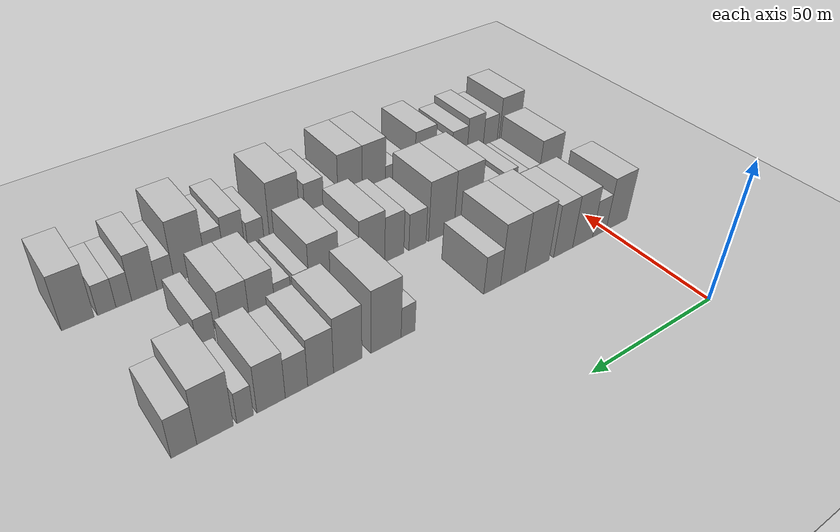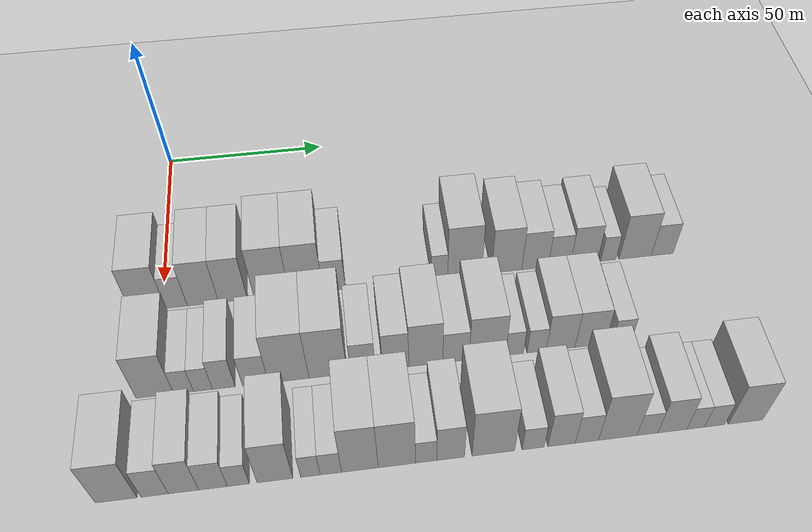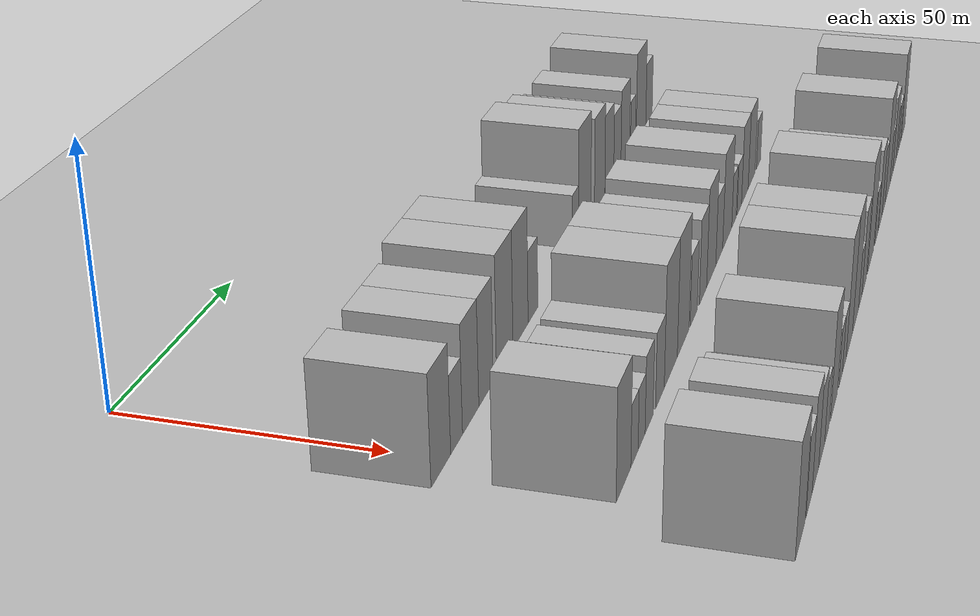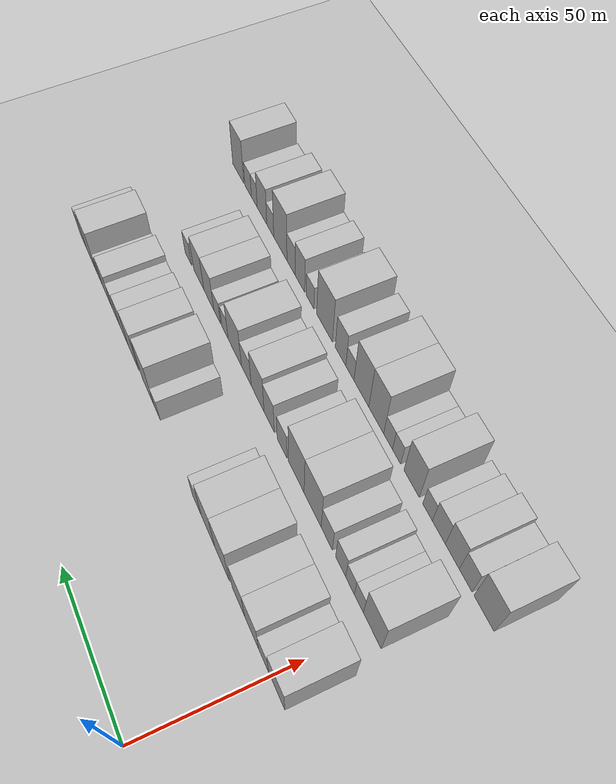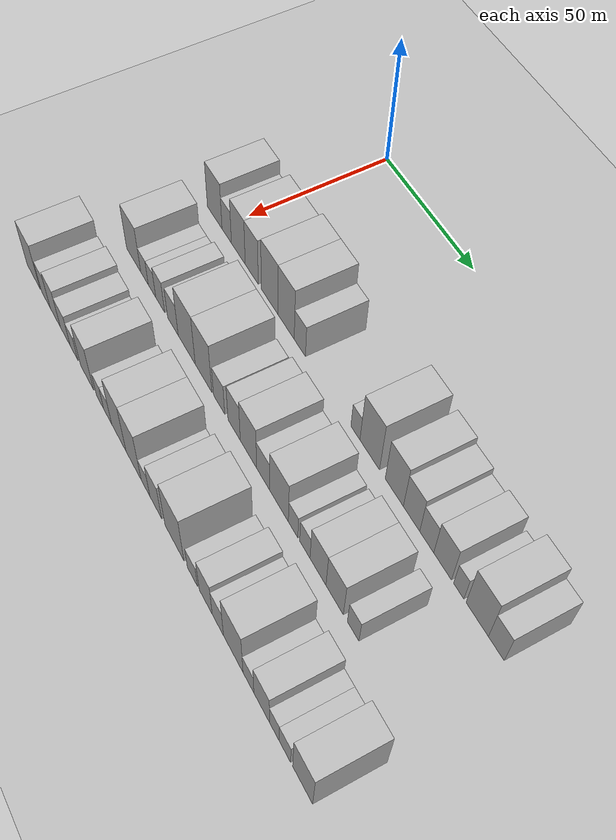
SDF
<sdf version="1.6">
 <world name="default">
  <include><name>ground_plane_1</name><uri>model://HANNAS_ground_plane</uri></include>
  <include>
   <name>ground_plane_2</name>
   <uri>model://HANNAS_ground_plane</uri>
   <pose>100 0 0  0 0 0</pose>
  </include>
  <model name="building_38">
   <static>1</static>
   <pose>50.0000 -4.0690 0 0.000000 0.000000 0.000000</pose>
   <link name="link">
    <pose>0 0 10.50 0 0 0</pose>
    <collision name="collision"><geometry><box><size>20.0000 10.0940 21.0000</size></box></geometry></collision>
    <visual name="visual">
     <cast_shadows>0</cast_shadows>
     <geometry><box><size>20.0000 10.0940 21.0000</size></box></geometry>
     <material>
      <script>
       <uri>model://HANNAS_wall/materials/scripts</uri>
       <uri>model://HANNAS_wall/materials/textures</uri>
       <name>vrc/HANNAS_wall</name>
      </script>
     </material>
    </visual>
   </link>
  </model>
  <model name="building_39">
   <static>1</static>
   <pose>50.0000 4.1592 0 0.000000 0.000000 0.000000</pose>
   <link name="link">
    <pose>0 0 7.50 0 0 0</pose>
    <collision name="collision"><geometry><box><size>20.0000 6.3625 15.0000</size></box></geometry></collision>
    <visual name="visual">
     <cast_shadows>0</cast_shadows>
     <geometry><box><size>20.0000 6.3625 15.0000</size></box></geometry>
     <material>
      <script>
       <uri>model://HANNAS_wall/materials/scripts</uri>
       <uri>model://HANNAS_wall/materials/textures</uri>
       <name>vrc/HANNAS_wall</name>
      </script>
     </material>
    </visual>
   </link>
  </model>
  <model name="building_40">
   <static>1</static>
   <pose>50.0000 11.9197 0 0.000000 0.000000 0.000000</pose>
   <link name="link">
    <pose>0 0 10.50 0 0 0</pose>
    <collision name="collision"><geometry><box><size>20.0000 9.1584 21.0000</size></box></geometry></collision>
    <visual name="visual">
     <cast_shadows>0</cast_shadows>
     <geometry><box><size>20.0000 9.1584 21.0000</size></box></geometry>
     <material>
      <script>
       <uri>model://HANNAS_wall/materials/scripts</uri>
       <uri>model://HANNAS_wall/materials/textures</uri>
       <name>vrc/HANNAS_wall</name>
      </script>
     </material>
    </visual>
   </link>
  </model>
  <model name="building_41">
   <static>1</static>
   <pose>50.0000 20.7276 0 0.000000 0.000000 0.000000</pose>
   <link name="link">
    <pose>0 0 10.50 0 0 0</pose>
    <collision name="collision"><geometry><box><size>20.0000 8.4575 21.0000</size></box></geometry></collision>
    <visual name="visual">
     <cast_shadows>0</cast_shadows>
     <geometry><box><size>20.0000 8.4575 21.0000</size></box></geometry>
     <material>
      <script>
       <uri>model://HANNAS_wall/materials/scripts</uri>
       <uri>model://HANNAS_wall/materials/textures</uri>
       <name>vrc/HANNAS_wall</name>
      </script>
     </material>
    </visual>
   </link>
  </model>
  <model name="building_42">
   <static>1</static>
   <pose>50.0000 32.1395 0 0.000000 0.000000 0.000000</pose>
   <link name="link">
    <pose>0 0 12.00 0 0 0</pose>
    <collision name="collision"><geometry><box><size>20.0000 10.3663 24.0000</size></box></geometry></collision>
    <visual name="visual">
     <cast_shadows>0</cast_shadows>
     <geometry><box><size>20.0000 10.3663 24.0000</size></box></geometry>
     <material>
      <script>
       <uri>model://HANNAS_wall/materials/scripts</uri>
       <uri>model://HANNAS_wall/materials/textures</uri>
       <name>vrc/HANNAS_wall</name>
      </script>
     </material>
    </visual>
   </link>
  </model>
  <model name="building_43">
   <static>1</static>
   <pose>50.0000 42.3265 0 0.000000 0.000000 0.000000</pose>
   <link name="link">
    <pose>0 0 12.00 0 0 0</pose>
    <collision name="collision"><geometry><box><size>20.0000 10.0076 24.0000</size></box></geometry></collision>
    <visual name="visual">
     <cast_shadows>0</cast_shadows>
     <geometry><box><size>20.0000 10.0076 24.0000</size></box></geometry>
     <material>
      <script>
       <uri>model://HANNAS_wall/materials/scripts</uri>
       <uri>model://HANNAS_wall/materials/textures</uri>
       <name>vrc/HANNAS_wall</name>
      </script>
     </material>
    </visual>
   </link>
  </model>
  <model name="building_44">
   <static>1</static>
   <pose>50.0000 50.7054 0 0.000000 0.000000 0.000000</pose>
   <link name="link">
    <pose>0 0 7.50 0 0 0</pose>
    <collision name="collision"><geometry><box><size>20.0000 6.7502 15.0000</size></box></geometry></collision>
    <visual name="visual">
     <cast_shadows>0</cast_shadows>
     <geometry><box><size>20.0000 6.7502 15.0000</size></box></geometry>
     <material>
      <script>
       <uri>model://HANNAS_wall/materials/scripts</uri>
       <uri>model://HANNAS_wall/materials/textures</uri>
       <name>vrc/HANNAS_wall</name>
      </script>
     </material>
    </visual>
   </link>
  </model>
  <model name="building_45">
   <static>1</static>
   <pose>50.0000 82.4860 0 0.000000 0.000000 0.000000</pose>
   <link name="link">
    <pose>0 0 6.00 0 0 0</pose>
    <collision name="collision"><geometry><box><size>20.0000 4.9370 12.0000</size></box></geometry></collision>
    <visual name="visual">
     <cast_shadows>0</cast_shadows>
     <geometry><box><size>20.0000 4.9370 12.0000</size></box></geometry>
     <material>
      <script>
       <uri>model://HANNAS_wall/materials/scripts</uri>
       <uri>model://HANNAS_wall/materials/textures</uri>
       <name>vrc/HANNAS_wall</name>
      </script>
     </material>
    </visual>
   </link>
  </model>
  <model name="building_46">
   <static>1</static>
   <pose>50.0000 90.1778 0 0.000000 0.000000 0.000000</pose>
   <link name="link">
    <pose>0 0 12.00 0 0 0</pose>
    <collision name="collision"><geometry><box><size>20.0000 10.4464 24.0000</size></box></geometry></collision>
    <visual name="visual">
     <cast_shadows>0</cast_shadows>
     <geometry><box><size>20.0000 10.4464 24.0000</size></box></geometry>
     <material>
      <script>
       <uri>model://HANNAS_wall/materials/scripts</uri>
       <uri>model://HANNAS_wall/materials/textures</uri>
       <name>vrc/HANNAS_wall</name>
      </script>
     </material>
    </visual>
   </link>
  </model>
  <model name="building_47">
   <static>1</static>
   <pose>50.0000 103.0657 0 0.000000 0.000000 0.000000</pose>
   <link name="link">
    <pose>0 0 10.50 0 0 0</pose>
    <collision name="collision"><geometry><box><size>20.0000 9.3296 21.0000</size></box></geometry></collision>
    <visual name="visual">
     <cast_shadows>0</cast_shadows>
     <geometry><box><size>20.0000 9.3296 21.0000</size></box></geometry>
     <material>
      <script>
       <uri>model://HANNAS_wall/materials/scripts</uri>
       <uri>model://HANNAS_wall/materials/textures</uri>
       <name>vrc/HANNAS_wall</name>
      </script>
     </material>
    </visual>
   </link>
  </model>
  <model name="building_48">
   <static>1</static>
   <pose>50.0000 111.8211 0 0.000000 0.000000 0.000000</pose>
   <link name="link">
    <pose>0 0 9.00 0 0 0</pose>
    <collision name="collision"><geometry><box><size>20.0000 8.1811 18.0000</size></box></geometry></collision>
    <visual name="visual">
     <cast_shadows>0</cast_shadows>
     <geometry><box><size>20.0000 8.1811 18.0000</size></box></geometry>
     <material>
      <script>
       <uri>model://HANNAS_wall/materials/scripts</uri>
       <uri>model://HANNAS_wall/materials/textures</uri>
       <name>vrc/HANNAS_wall</name>
      </script>
     </material>
    </visual>
   </link>
  </model>
  <model name="building_49">
   <static>1</static>
   <pose>50.0000 119.3543 0 0.000000 0.000000 0.000000</pose>
   <link name="link">
    <pose>0 0 7.50 0 0 0</pose>
    <collision name="collision"><geometry><box><size>20.0000 6.8853 15.0000</size></box></geometry></collision>
    <visual name="visual">
     <cast_shadows>0</cast_shadows>
     <geometry><box><size>20.0000 6.8853 15.0000</size></box></geometry>
     <material>
      <script>
       <uri>model://HANNAS_wall/materials/scripts</uri>
       <uri>model://HANNAS_wall/materials/textures</uri>
       <name>vrc/HANNAS_wall</name>
      </script>
     </material>
    </visual>
   </link>
  </model>
  <model name="building_50">
   <static>1</static>
   <pose>50.0000 127.0319 0 0.000000 0.000000 0.000000</pose>
   <link name="link">
    <pose>0 0 9.00 0 0 0</pose>
    <collision name="collision"><geometry><box><size>20.0000 8.4700 18.0000</size></box></geometry></collision>
    <visual name="visual">
     <cast_shadows>0</cast_shadows>
     <geometry><box><size>20.0000 8.4700 18.0000</size></box></geometry>
     <material>
      <script>
       <uri>model://HANNAS_wall/materials/scripts</uri>
       <uri>model://HANNAS_wall/materials/textures</uri>
       <name>vrc/HANNAS_wall</name>
      </script>
     </material>
    </visual>
   </link>
  </model>
  <model name="building_51">
   <static>1</static>
   <pose>50.0000 134.6706 0 0.000000 0.000000 0.000000</pose>
   <link name="link">
    <pose>0 0 6.00 0 0 0</pose>
    <collision name="collision"><geometry><box><size>20.0000 4.8075 12.0000</size></box></geometry></collision>
    <visual name="visual">
     <cast_shadows>0</cast_shadows>
     <geometry><box><size>20.0000 4.8075 12.0000</size></box></geometry>
     <material>
      <script>
       <uri>model://HANNAS_wall/materials/scripts</uri>
       <uri>model://HANNAS_wall/materials/textures</uri>
       <name>vrc/HANNAS_wall</name>
      </script>
     </material>
    </visual>
   </link>
  </model>
  <model name="building_52">
   <static>1</static>
   <pose>50.0000 143.1510 0 0.000000 0.000000 0.000000</pose>
   <link name="link">
    <pose>0 0 10.50 0 0 0</pose>
    <collision name="collision"><geometry><box><size>20.0000 10.1533 21.0000</size></box></geometry></collision>
    <visual name="visual">
     <cast_shadows>0</cast_shadows>
     <geometry><box><size>20.0000 10.1533 21.0000</size></box></geometry>
     <material>
      <script>
       <uri>model://HANNAS_wall/materials/scripts</uri>
       <uri>model://HANNAS_wall/materials/textures</uri>
       <name>vrc/HANNAS_wall</name>
      </script>
     </material>
    </visual>
   </link>
  </model>
  <model name="building_53">
   <static>1</static>
   <pose>50.0000 151.7000 0 0.000000 0.000000 0.000000</pose>
   <link name="link">
    <pose>0 0 7.50 0 0 0</pose>
    <collision name="collision"><geometry><box><size>20.0000 6.9446 15.0000</size></box></geometry></collision>
    <visual name="visual">
     <cast_shadows>0</cast_shadows>
     <geometry><box><size>20.0000 6.9446 15.0000</size></box></geometry>
     <material>
      <script>
       <uri>model://HANNAS_wall/materials/scripts</uri>
       <uri>model://HANNAS_wall/materials/textures</uri>
       <name>vrc/HANNAS_wall</name>
      </script>
     </material>
    </visual>
   </link>
  </model>
  <model name="building_111">
   <static>1</static>
   <pose>79.0000 -0.7210 0 0.000000 0.000000 0.000000</pose>
   <link name="link">
    <pose>0 0 10.50 0 0 0</pose>
    <collision name="collision"><geometry><box><size>20.0000 10.2492 21.0000</size></box></geometry></collision>
    <visual name="visual">
     <cast_shadows>0</cast_shadows>
     <geometry><box><size>20.0000 10.2492 21.0000</size></box></geometry>
     <material>
      <script>
       <uri>model://HANNAS_wall/materials/scripts</uri>
       <uri>model://HANNAS_wall/materials/textures</uri>
       <name>vrc/HANNAS_wall</name>
      </script>
     </material>
    </visual>
   </link>
  </model>
  <model name="building_112">
   <static>1</static>
   <pose>79.0000 7.0913 0 0.000000 0.000000 0.000000</pose>
   <link name="link">
    <pose>0 0 6.00 0 0 0</pose>
    <collision name="collision"><geometry><box><size>20.0000 5.3755 12.0000</size></box></geometry></collision>
    <visual name="visual">
     <cast_shadows>0</cast_shadows>
     <geometry><box><size>20.0000 5.3755 12.0000</size></box></geometry>
     <material>
      <script>
       <uri>model://HANNAS_wall/materials/scripts</uri>
       <uri>model://HANNAS_wall/materials/textures</uri>
       <name>vrc/HANNAS_wall</name>
      </script>
     </material>
    </visual>
   </link>
  </model>
  <model name="building_113">
   <static>1</static>
   <pose>79.0000 12.3919 0 0.000000 0.000000 0.000000</pose>
   <link name="link">
    <pose>0 0 6.00 0 0 0</pose>
    <collision name="collision"><geometry><box><size>20.0000 5.2257 12.0000</size></box></geometry></collision>
    <visual name="visual">
     <cast_shadows>0</cast_shadows>
     <geometry><box><size>20.0000 5.2257 12.0000</size></box></geometry>
     <material>
      <script>
       <uri>model://HANNAS_wall/materials/scripts</uri>
       <uri>model://HANNAS_wall/materials/textures</uri>
       <name>vrc/HANNAS_wall</name>
      </script>
     </material>
    </visual>
   </link>
  </model>
  <model name="building_114">
   <static>1</static>
   <pose>79.0000 18.1081 0 0.000000 0.000000 0.000000</pose>
   <link name="link">
    <pose>0 0 7.50 0 0 0</pose>
    <collision name="collision"><geometry><box><size>20.0000 6.2067 15.0000</size></box></geometry></collision>
    <visual name="visual">
     <cast_shadows>0</cast_shadows>
     <geometry><box><size>20.0000 6.2067 15.0000</size></box></geometry>
     <material>
      <script>
       <uri>model://HANNAS_wall/materials/scripts</uri>
       <uri>model://HANNAS_wall/materials/textures</uri>
       <name>vrc/HANNAS_wall</name>
      </script>
     </material>
    </visual>
   </link>
  </model>
  <model name="building_115">
   <static>1</static>
   <pose>79.0000 26.8116 0 0.000000 0.000000 0.000000</pose>
   <link name="link">
    <pose>0 0 7.50 0 0 0</pose>
    <collision name="collision"><geometry><box><size>20.0000 7.2002 15.0000</size></box></geometry></collision>
    <visual name="visual">
     <cast_shadows>0</cast_shadows>
     <geometry><box><size>20.0000 7.2002 15.0000</size></box></geometry>
     <material>
      <script>
       <uri>model://HANNAS_wall/materials/scripts</uri>
       <uri>model://HANNAS_wall/materials/textures</uri>
       <name>vrc/HANNAS_wall</name>
      </script>
     </material>
    </visual>
   </link>
  </model>
  <model name="building_116">
   <static>1</static>
   <pose>79.0000 36.0334 0 0.000000 0.000000 0.000000</pose>
   <link name="link">
    <pose>0 0 12.00 0 0 0</pose>
    <collision name="collision"><geometry><box><size>20.0000 11.2434 24.0000</size></box></geometry></collision>
    <visual name="visual">
     <cast_shadows>0</cast_shadows>
     <geometry><box><size>20.0000 11.2434 24.0000</size></box></geometry>
     <material>
      <script>
       <uri>model://HANNAS_wall/materials/scripts</uri>
       <uri>model://HANNAS_wall/materials/textures</uri>
       <name>vrc/HANNAS_wall</name>
      </script>
     </material>
    </visual>
   </link>
  </model>
  <model name="building_117">
   <static>1</static>
   <pose>79.0000 46.9865 0 0.000000 0.000000 0.000000</pose>
   <link name="link">
    <pose>0 0 12.00 0 0 0</pose>
    <collision name="collision"><geometry><box><size>20.0000 10.6627 24.0000</size></box></geometry></collision>
    <visual name="visual">
     <cast_shadows>0</cast_shadows>
     <geometry><box><size>20.0000 10.6627 24.0000</size></box></geometry>
     <material>
      <script>
       <uri>model://HANNAS_wall/materials/scripts</uri>
       <uri>model://HANNAS_wall/materials/textures</uri>
       <name>vrc/HANNAS_wall</name>
      </script>
     </material>
    </visual>
   </link>
  </model>
  <model name="building_118">
   <static>1</static>
   <pose>79.0000 56.7984 0 0.000000 0.000000 0.000000</pose>
   <link name="link">
    <pose>0 0 7.50 0 0 0</pose>
    <collision name="collision"><geometry><box><size>20.0000 6.9612 15.0000</size></box></geometry></collision>
    <visual name="visual">
     <cast_shadows>0</cast_shadows>
     <geometry><box><size>20.0000 6.9612 15.0000</size></box></geometry>
     <material>
      <script>
       <uri>model://HANNAS_wall/materials/scripts</uri>
       <uri>model://HANNAS_wall/materials/textures</uri>
       <name>vrc/HANNAS_wall</name>
      </script>
     </material>
    </visual>
   </link>
  </model>
  <model name="building_119">
   <static>1</static>
   <pose>79.0000 66.0045 0 0.000000 0.000000 0.000000</pose>
   <link name="link">
    <pose>0 0 9.00 0 0 0</pose>
    <collision name="collision"><geometry><box><size>20.0000 7.4509 18.0000</size></box></geometry></collision>
    <visual name="visual">
     <cast_shadows>0</cast_shadows>
     <geometry><box><size>20.0000 7.4509 18.0000</size></box></geometry>
     <material>
      <script>
       <uri>model://HANNAS_wall/materials/scripts</uri>
       <uri>model://HANNAS_wall/materials/textures</uri>
       <name>vrc/HANNAS_wall</name>
      </script>
     </material>
    </visual>
   </link>
  </model>
  <model name="building_120">
   <static>1</static>
   <pose>79.0000 74.5468 0 0.000000 0.000000 0.000000</pose>
   <link name="link">
    <pose>0 0 10.50 0 0 0</pose>
    <collision name="collision"><geometry><box><size>20.0000 9.6337 21.0000</size></box></geometry></collision>
    <visual name="visual">
     <cast_shadows>0</cast_shadows>
     <geometry><box><size>20.0000 9.6337 21.0000</size></box></geometry>
     <material>
      <script>
       <uri>model://HANNAS_wall/materials/scripts</uri>
       <uri>model://HANNAS_wall/materials/textures</uri>
       <name>vrc/HANNAS_wall</name>
      </script>
     </material>
    </visual>
   </link>
  </model>
  <model name="building_121">
   <static>1</static>
   <pose>79.0000 83.1096 0 0.000000 0.000000 0.000000</pose>
   <link name="link">
    <pose>0 0 7.50 0 0 0</pose>
    <collision name="collision"><geometry><box><size>20.0000 7.4921 15.0000</size></box></geometry></collision>
    <visual name="visual">
     <cast_shadows>0</cast_shadows>
     <geometry><box><size>20.0000 7.4921 15.0000</size></box></geometry>
     <material>
      <script>
       <uri>model://HANNAS_wall/materials/scripts</uri>
       <uri>model://HANNAS_wall/materials/textures</uri>
       <name>vrc/HANNAS_wall</name>
      </script>
     </material>
    </visual>
   </link>
  </model>
  <model name="building_122">
   <static>1</static>
   <pose>79.0000 92.1041 0 0.000000 0.000000 0.000000</pose>
   <link name="link">
    <pose>0 0 10.50 0 0 0</pose>
    <collision name="collision"><geometry><box><size>20.0000 10.4968 21.0000</size></box></geometry></collision>
    <visual name="visual">
     <cast_shadows>0</cast_shadows>
     <geometry><box><size>20.0000 10.4968 21.0000</size></box></geometry>
     <material>
      <script>
       <uri>model://HANNAS_wall/materials/scripts</uri>
       <uri>model://HANNAS_wall/materials/textures</uri>
       <name>vrc/HANNAS_wall</name>
      </script>
     </material>
    </visual>
   </link>
  </model>
  <model name="building_123">
   <static>1</static>
   <pose>79.0000 99.9424 0 0.000000 0.000000 0.000000</pose>
   <link name="link">
    <pose>0 0 6.00 0 0 0</pose>
    <collision name="collision"><geometry><box><size>20.0000 5.1799 12.0000</size></box></geometry></collision>
    <visual name="visual">
     <cast_shadows>0</cast_shadows>
     <geometry><box><size>20.0000 5.1799 12.0000</size></box></geometry>
     <material>
      <script>
       <uri>model://HANNAS_wall/materials/scripts</uri>
       <uri>model://HANNAS_wall/materials/textures</uri>
       <name>vrc/HANNAS_wall</name>
      </script>
     </material>
    </visual>
   </link>
  </model>
  <model name="building_124">
   <static>1</static>
   <pose>79.0000 106.3053 0 0.000000 0.000000 0.000000</pose>
   <link name="link">
    <pose>0 0 6.00 0 0 0</pose>
    <collision name="collision"><geometry><box><size>20.0000 5.5459 12.0000</size></box></geometry></collision>
    <visual name="visual">
     <cast_shadows>0</cast_shadows>
     <geometry><box><size>20.0000 5.5459 12.0000</size></box></geometry>
     <material>
      <script>
       <uri>model://HANNAS_wall/materials/scripts</uri>
       <uri>model://HANNAS_wall/materials/textures</uri>
       <name>vrc/HANNAS_wall</name>
      </script>
     </material>
    </visual>
   </link>
  </model>
  <model name="building_125">
   <static>1</static>
   <pose>79.0000 113.2709 0 0.000000 0.000000 0.000000</pose>
   <link name="link">
    <pose>0 0 9.00 0 0 0</pose>
    <collision name="collision"><geometry><box><size>20.0000 8.3852 18.0000</size></box></geometry></collision>
    <visual name="visual">
     <cast_shadows>0</cast_shadows>
     <geometry><box><size>20.0000 8.3852 18.0000</size></box></geometry>
     <material>
      <script>
       <uri>model://HANNAS_wall/materials/scripts</uri>
       <uri>model://HANNAS_wall/materials/textures</uri>
       <name>vrc/HANNAS_wall</name>
      </script>
     </material>
    </visual>
   </link>
  </model>
  <model name="building_126">
   <static>1</static>
   <pose>79.0000 121.8980 0 0.000000 0.000000 0.000000</pose>
   <link name="link">
    <pose>0 0 9.00 0 0 0</pose>
    <collision name="collision"><geometry><box><size>20.0000 8.8690 18.0000</size></box></geometry></collision>
    <visual name="visual">
     <cast_shadows>0</cast_shadows>
     <geometry><box><size>20.0000 8.8690 18.0000</size></box></geometry>
     <material>
      <script>
       <uri>model://HANNAS_wall/materials/scripts</uri>
       <uri>model://HANNAS_wall/materials/textures</uri>
       <name>vrc/HANNAS_wall</name>
      </script>
     </material>
    </visual>
   </link>
  </model>
  <model name="building_127">
   <static>1</static>
   <pose>79.0000 131.2078 0 0.000000 0.000000 0.000000</pose>
   <link name="link">
    <pose>0 0 6.00 0 0 0</pose>
    <collision name="collision"><geometry><box><size>20.0000 5.7507 12.0000</size></box></geometry></collision>
    <visual name="visual">
     <cast_shadows>0</cast_shadows>
     <geometry><box><size>20.0000 5.7507 12.0000</size></box></geometry>
     <material>
      <script>
       <uri>model://HANNAS_wall/materials/scripts</uri>
       <uri>model://HANNAS_wall/materials/textures</uri>
       <name>vrc/HANNAS_wall</name>
      </script>
     </material>
    </visual>
   </link>
  </model>
  <model name="building_182">
   <static>1</static>
   <pose>108.0000 -9.0669 0 0.000000 0.000000 0.000000</pose>
   <link name="link">
    <pose>0 0 10.50 0 0 0</pose>
    <collision name="collision"><geometry><box><size>20.0000 10.4814 21.0000</size></box></geometry></collision>
    <visual name="visual">
     <cast_shadows>0</cast_shadows>
     <geometry><box><size>20.0000 10.4814 21.0000</size></box></geometry>
     <material>
      <script>
       <uri>model://HANNAS_wall/materials/scripts</uri>
       <uri>model://HANNAS_wall/materials/textures</uri>
       <name>vrc/HANNAS_wall</name>
      </script>
     </material>
    </visual>
   </link>
  </model>
  <model name="building_183">
   <static>1</static>
   <pose>108.0000 0.6115 0 0.000000 0.000000 0.000000</pose>
   <link name="link">
    <pose>0 0 7.50 0 0 0</pose>
    <collision name="collision"><geometry><box><size>20.0000 6.8754 15.0000</size></box></geometry></collision>
    <visual name="visual">
     <cast_shadows>0</cast_shadows>
     <geometry><box><size>20.0000 6.8754 15.0000</size></box></geometry>
     <material>
      <script>
       <uri>model://HANNAS_wall/materials/scripts</uri>
       <uri>model://HANNAS_wall/materials/textures</uri>
       <name>vrc/HANNAS_wall</name>
      </script>
     </material>
    </visual>
   </link>
  </model>
  <model name="building_184">
   <static>1</static>
   <pose>108.0000 7.9285 0 0.000000 0.000000 0.000000</pose>
   <link name="link">
    <pose>0 0 9.00 0 0 0</pose>
    <collision name="collision"><geometry><box><size>20.0000 7.7584 18.0000</size></box></geometry></collision>
    <visual name="visual">
     <cast_shadows>0</cast_shadows>
     <geometry><box><size>20.0000 7.7584 18.0000</size></box></geometry>
     <material>
      <script>
       <uri>model://HANNAS_wall/materials/scripts</uri>
       <uri>model://HANNAS_wall/materials/textures</uri>
       <name>vrc/HANNAS_wall</name>
      </script>
     </material>
    </visual>
   </link>
  </model>
  <model name="building_185">
   <static>1</static>
   <pose>108.0000 15.4699 0 0.000000 0.000000 0.000000</pose>
   <link name="link">
    <pose>0 0 7.50 0 0 0</pose>
    <collision name="collision"><geometry><box><size>20.0000 7.3244 15.0000</size></box></geometry></collision>
    <visual name="visual">
     <cast_shadows>0</cast_shadows>
     <geometry><box><size>20.0000 7.3244 15.0000</size></box></geometry>
     <material>
      <script>
       <uri>model://HANNAS_wall/materials/scripts</uri>
       <uri>model://HANNAS_wall/materials/textures</uri>
       <name>vrc/HANNAS_wall</name>
      </script>
     </material>
    </visual>
   </link>
  </model>
  <model name="building_186">
   <static>1</static>
   <pose>108.0000 21.9310 0 0.000000 0.000000 0.000000</pose>
   <link name="link">
    <pose>0 0 6.00 0 0 0</pose>
    <collision name="collision"><geometry><box><size>20.0000 5.5977 12.0000</size></box></geometry></collision>
    <visual name="visual">
     <cast_shadows>0</cast_shadows>
     <geometry><box><size>20.0000 5.5977 12.0000</size></box></geometry>
     <material>
      <script>
       <uri>model://HANNAS_wall/materials/scripts</uri>
       <uri>model://HANNAS_wall/materials/textures</uri>
       <name>vrc/HANNAS_wall</name>
      </script>
     </material>
    </visual>
   </link>
  </model>
  <model name="building_187">
   <static>1</static>
   <pose>108.0000 31.3382 0 0.000000 0.000000 0.000000</pose>
   <link name="link">
    <pose>0 0 10.50 0 0 0</pose>
    <collision name="collision"><geometry><box><size>20.0000 9.2167 21.0000</size></box></geometry></collision>
    <visual name="visual">
     <cast_shadows>0</cast_shadows>
     <geometry><box><size>20.0000 9.2167 21.0000</size></box></geometry>
     <material>
      <script>
       <uri>model://HANNAS_wall/materials/scripts</uri>
       <uri>model://HANNAS_wall/materials/textures</uri>
       <name>vrc/HANNAS_wall</name>
      </script>
     </material>
    </visual>
   </link>
  </model>
  <model name="building_188">
   <static>1</static>
   <pose>108.0000 40.4861 0 0.000000 0.000000 0.000000</pose>
   <link name="link">
    <pose>0 0 6.00 0 0 0</pose>
    <collision name="collision"><geometry><box><size>20.0000 5.0791 12.0000</size></box></geometry></collision>
    <visual name="visual">
     <cast_shadows>0</cast_shadows>
     <geometry><box><size>20.0000 5.0791 12.0000</size></box></geometry>
     <material>
      <script>
       <uri>model://HANNAS_wall/materials/scripts</uri>
       <uri>model://HANNAS_wall/materials/textures</uri>
       <name>vrc/HANNAS_wall</name>
      </script>
     </material>
    </visual>
   </link>
  </model>
  <model name="building_189">
   <static>1</static>
   <pose>108.0000 45.7926 0 0.000000 0.000000 0.000000</pose>
   <link name="link">
    <pose>0 0 6.00 0 0 0</pose>
    <collision name="collision"><geometry><box><size>20.0000 5.5339 12.0000</size></box></geometry></collision>
    <visual name="visual">
     <cast_shadows>0</cast_shadows>
     <geometry><box><size>20.0000 5.5339 12.0000</size></box></geometry>
     <material>
      <script>
       <uri>model://HANNAS_wall/materials/scripts</uri>
       <uri>model://HANNAS_wall/materials/textures</uri>
       <name>vrc/HANNAS_wall</name>
      </script>
     </material>
    </visual>
   </link>
  </model>
  <model name="building_190">
   <static>1</static>
   <pose>108.0000 53.3817 0 0.000000 0.000000 0.000000</pose>
   <link name="link">
    <pose>0 0 12.00 0 0 0</pose>
    <collision name="collision"><geometry><box><size>20.0000 9.6443 24.0000</size></box></geometry></collision>
    <visual name="visual">
     <cast_shadows>0</cast_shadows>
     <geometry><box><size>20.0000 9.6443 24.0000</size></box></geometry>
     <material>
      <script>
       <uri>model://HANNAS_wall/materials/scripts</uri>
       <uri>model://HANNAS_wall/materials/textures</uri>
       <name>vrc/HANNAS_wall</name>
      </script>
     </material>
    </visual>
   </link>
  </model>
  <model name="building_191">
   <static>1</static>
   <pose>108.0000 63.1325 0 0.000000 0.000000 0.000000</pose>
   <link name="link">
    <pose>0 0 12.00 0 0 0</pose>
    <collision name="collision"><geometry><box><size>20.0000 9.8573 24.0000</size></box></geometry></collision>
    <visual name="visual">
     <cast_shadows>0</cast_shadows>
     <geometry><box><size>20.0000 9.8573 24.0000</size></box></geometry>
     <material>
      <script>
       <uri>model://HANNAS_wall/materials/scripts</uri>
       <uri>model://HANNAS_wall/materials/textures</uri>
       <name>vrc/HANNAS_wall</name>
      </script>
     </material>
    </visual>
   </link>
  </model>
  <model name="building_192">
   <static>1</static>
   <pose>108.0000 70.8555 0 0.000000 0.000000 0.000000</pose>
   <link name="link">
    <pose>0 0 6.00 0 0 0</pose>
    <collision name="collision"><geometry><box><size>20.0000 5.5886 12.0000</size></box></geometry></collision>
    <visual name="visual">
     <cast_shadows>0</cast_shadows>
     <geometry><box><size>20.0000 5.5886 12.0000</size></box></geometry>
     <material>
      <script>
       <uri>model://HANNAS_wall/materials/scripts</uri>
       <uri>model://HANNAS_wall/materials/textures</uri>
       <name>vrc/HANNAS_wall</name>
      </script>
     </material>
    </visual>
   </link>
  </model>
  <model name="building_193">
   <static>1</static>
   <pose>108.0000 77.3222 0 0.000000 0.000000 0.000000</pose>
   <link name="link">
    <pose>0 0 9.00 0 0 0</pose>
    <collision name="collision"><geometry><box><size>20.0000 7.3449 18.0000</size></box></geometry></collision>
    <visual name="visual">
     <cast_shadows>0</cast_shadows>
     <geometry><box><size>20.0000 7.3449 18.0000</size></box></geometry>
     <material>
      <script>
       <uri>model://HANNAS_wall/materials/scripts</uri>
       <uri>model://HANNAS_wall/materials/textures</uri>
       <name>vrc/HANNAS_wall</name>
      </script>
     </material>
    </visual>
   </link>
  </model>
  <model name="building_194">
   <static>1</static>
   <pose>108.0000 88.7080 0 0.000000 0.000000 0.000000</pose>
   <link name="link">
    <pose>0 0 12.00 0 0 0</pose>
    <collision name="collision"><geometry><box><size>20.0000 11.4267 24.0000</size></box></geometry></collision>
    <visual name="visual">
     <cast_shadows>0</cast_shadows>
     <geometry><box><size>20.0000 11.4267 24.0000</size></box></geometry>
     <material>
      <script>
       <uri>model://HANNAS_wall/materials/scripts</uri>
       <uri>model://HANNAS_wall/materials/textures</uri>
       <name>vrc/HANNAS_wall</name>
      </script>
     </material>
    </visual>
   </link>
  </model>
  <model name="building_195">
   <static>1</static>
   <pose>108.0000 99.3933 0 0.000000 0.000000 0.000000</pose>
   <link name="link">
    <pose>0 0 6.00 0 0 0</pose>
    <collision name="collision"><geometry><box><size>20.0000 5.9439 12.0000</size></box></geometry></collision>
    <visual name="visual">
     <cast_shadows>0</cast_shadows>
     <geometry><box><size>20.0000 5.9439 12.0000</size></box></geometry>
     <material>
      <script>
       <uri>model://HANNAS_wall/materials/scripts</uri>
       <uri>model://HANNAS_wall/materials/textures</uri>
       <name>vrc/HANNAS_wall</name>
      </script>
     </material>
    </visual>
   </link>
  </model>
  <model name="building_196">
   <static>1</static>
   <pose>108.0000 107.0836 0 0.000000 0.000000 0.000000</pose>
   <link name="link">
    <pose>0 0 9.00 0 0 0</pose>
    <collision name="collision"><geometry><box><size>20.0000 7.4367 18.0000</size></box></geometry></collision>
    <visual name="visual">
     <cast_shadows>0</cast_shadows>
     <geometry><box><size>20.0000 7.4367 18.0000</size></box></geometry>
     <material>
      <script>
       <uri>model://HANNAS_wall/materials/scripts</uri>
       <uri>model://HANNAS_wall/materials/textures</uri>
       <name>vrc/HANNAS_wall</name>
      </script>
     </material>
    </visual>
   </link>
  </model>
  <model name="building_197">
   <static>1</static>
   <pose>108.0000 113.9406 0 0.000000 0.000000 0.000000</pose>
   <link name="link">
    <pose>0 0 7.50 0 0 0</pose>
    <collision name="collision"><geometry><box><size>20.0000 6.2773 15.0000</size></box></geometry></collision>
    <visual name="visual">
     <cast_shadows>0</cast_shadows>
     <geometry><box><size>20.0000 6.2773 15.0000</size></box></geometry>
     <material>
      <script>
       <uri>model://HANNAS_wall/materials/scripts</uri>
       <uri>model://HANNAS_wall/materials/textures</uri>
       <name>vrc/HANNAS_wall</name>
      </script>
     </material>
    </visual>
   </link>
  </model>
  <model name="building_198">
   <static>1</static>
   <pose>108.0000 122.3624 0 0.000000 0.000000 0.000000</pose>
   <link name="link">
    <pose>0 0 12.00 0 0 0</pose>
    <collision name="collision"><geometry><box><size>20.0000 10.5663 24.0000</size></box></geometry></collision>
    <visual name="visual">
     <cast_shadows>0</cast_shadows>
     <geometry><box><size>20.0000 10.5663 24.0000</size></box></geometry>
     <material>
      <script>
       <uri>model://HANNAS_wall/materials/scripts</uri>
       <uri>model://HANNAS_wall/materials/textures</uri>
       <name>vrc/HANNAS_wall</name>
      </script>
     </material>
    </visual>
   </link>
  </model>
  <model name="building_199">
   <static>1</static>
   <pose>108.0000 130.5173 0 0.000000 0.000000 0.000000</pose>
   <link name="link">
    <pose>0 0 6.00 0 0 0</pose>
    <collision name="collision"><geometry><box><size>20.0000 5.7433 12.0000</size></box></geometry></collision>
    <visual name="visual">
     <cast_shadows>0</cast_shadows>
     <geometry><box><size>20.0000 5.7433 12.0000</size></box></geometry>
     <material>
      <script>
       <uri>model://HANNAS_wall/materials/scripts</uri>
       <uri>model://HANNAS_wall/materials/textures</uri>
       <name>vrc/HANNAS_wall</name>
      </script>
     </material>
    </visual>
   </link>
  </model>
  <model name="building_200">
   <static>1</static>
   <pose>108.0000 137.4087 0 0.000000 0.000000 0.000000</pose>
   <link name="link">
    <pose>0 0 9.00 0 0 0</pose>
    <collision name="collision"><geometry><box><size>20.0000 8.0395 18.0000</size></box></geometry></collision>
    <visual name="visual">
     <cast_shadows>0</cast_shadows>
     <geometry><box><size>20.0000 8.0395 18.0000</size></box></geometry>
     <material>
      <script>
       <uri>model://HANNAS_wall/materials/scripts</uri>
       <uri>model://HANNAS_wall/materials/textures</uri>
       <name>vrc/HANNAS_wall</name>
      </script>
     </material>
    </visual>
   </link>
  </model>
  <model name="building_201">
   <static>1</static>
   <pose>108.0000 143.8860 0 0.000000 0.000000 0.000000</pose>
   <link name="link">
    <pose>0 0 6.00 0 0 0</pose>
    <collision name="collision"><geometry><box><size>20.0000 4.9151 12.0000</size></box></geometry></collision>
    <visual name="visual">
     <cast_shadows>0</cast_shadows>
     <geometry><box><size>20.0000 4.9151 12.0000</size></box></geometry>
     <material>
      <script>
       <uri>model://HANNAS_wall/materials/scripts</uri>
       <uri>model://HANNAS_wall/materials/textures</uri>
       <name>vrc/HANNAS_wall</name>
      </script>
     </material>
    </visual>
   </link>
  </model>
  <model name="building_202">
   <static>1</static>
   <pose>108.0000 149.1714 0 0.000000 0.000000 0.000000</pose>
   <link name="link">
    <pose>0 0 6.00 0 0 0</pose>
    <collision name="collision"><geometry><box><size>20.0000 5.6558 12.0000</size></box></geometry></collision>
    <visual name="visual">
     <cast_shadows>0</cast_shadows>
     <geometry><box><size>20.0000 5.6558 12.0000</size></box></geometry>
     <material>
      <script>
       <uri>model://HANNAS_wall/materials/scripts</uri>
       <uri>model://HANNAS_wall/materials/textures</uri>
       <name>vrc/HANNAS_wall</name>
      </script>
     </material>
    </visual>
   </link>
  </model>
  <model name="building_203">
   <static>1</static>
   <pose>108.0000 157.8286 0 0.000000 0.000000 0.000000</pose>
   <link name="link">
    <pose>0 0 10.50 0 0 0</pose>
    <collision name="collision"><geometry><box><size>20.0000 9.6586 21.0000</size></box></geometry></collision>
    <visual name="visual">
     <cast_shadows>0</cast_shadows>
     <geometry><box><size>20.0000 9.6586 21.0000</size></box></geometry>
     <material>
      <script>
       <uri>model://HANNAS_wall/materials/scripts</uri>
       <uri>model://HANNAS_wall/materials/textures</uri>
       <name>vrc/HANNAS_wall</name>
      </script>
     </material>
    </visual>
   </link>
  </model>
 </world>
</sdf>
